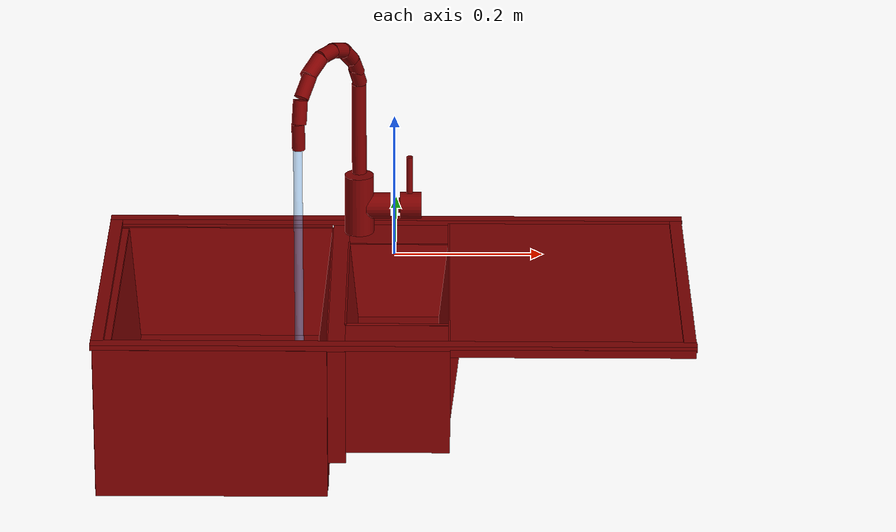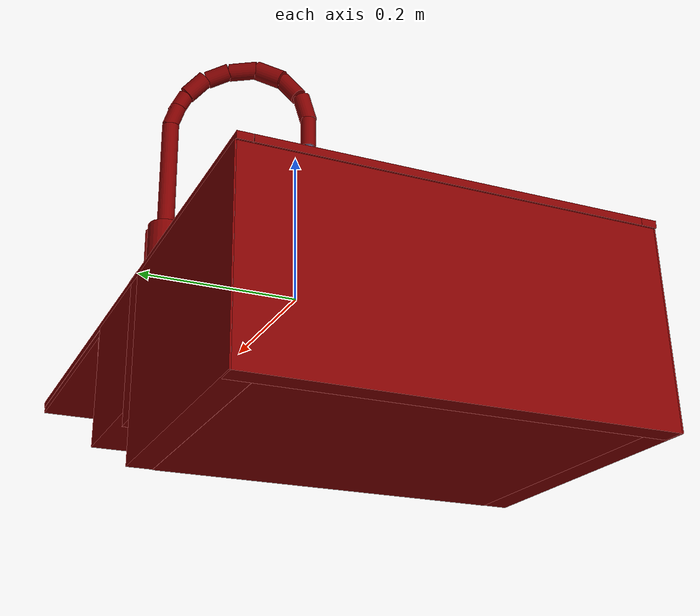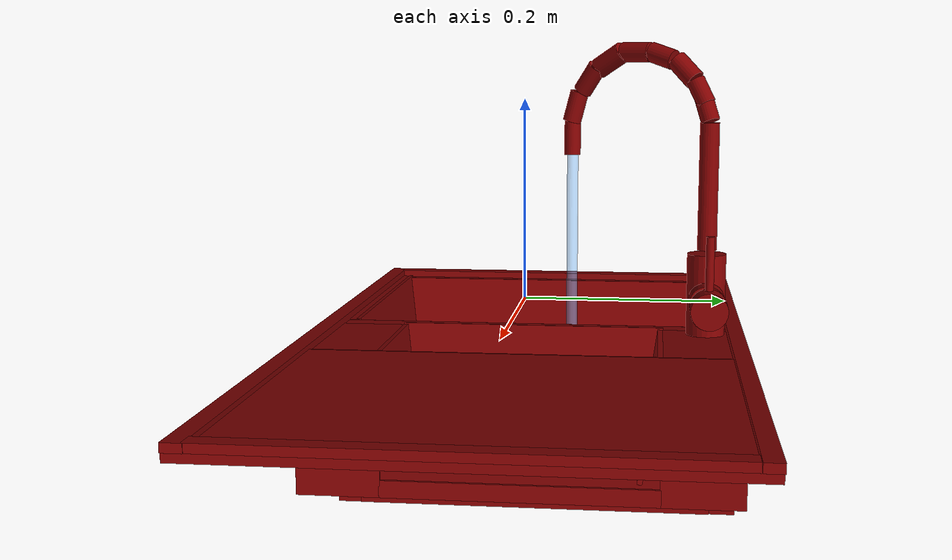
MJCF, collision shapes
<?xml version='1.0' encoding='UTF-8'?>
<mujoco model="model">
  <option timestep="0.002" gravity="0.0 0.0 -9.81"/>
  <compiler angle="radian"/>
  <asset>
    <mesh file="visuals/handle.obj" name="handle_vis"/>
    <mesh file="visuals/Body001.obj" name="Body001_vis"/>
    <mesh file="visuals/spout.obj" name="spout_vis"/>
    <texture file="visuals/T_BC001.png" name="Body001_material" type="2d"/>
    <material name="Body001_material" rgba="1 1 1 1.0" texture="Body001_material" shininess="0.1" specular="2"/>
    <texture file="visuals/T_BC001.png" name="handle_material" type="2d"/>
    <material name="handle_material" rgba="1 1 1 1.0" texture="handle_material" shininess="-1023.0" specular="0.3103448502657381"/>
    <texture file="visuals/T_BC001.png" name="spout_material" type="2d"/>
    <material name="spout_material" rgba="1 1 1 1.0" texture="spout_material" shininess="-1023.0" specular="0.3103448502657381"/>
  </asset>
  <default>
    <default class="visual">
      <geom conaffinity="0" contype="0" group="1" type="mesh"/>
    </default>
    <default class="collision">
      <geom group="0" rgba="0.5 0 0 0.5" solimp="0.998 0.998 0.001" solref="0.001 2"/>
    </default>
    <default class="spawn">
      <geom group="0" rgba="1 1 1 0.5" contype="0" conaffinity="0"/>
      <site group="0" rgba="1 1 1 0.5"/>
    </default>
    <default class="region">
      <geom group="1" conaffinity="0" contype="0" rgba="0 1 0 0"/>
    </default>
  </default>
  <worldbody>
    <body>
      <body name="object">
        <geom mesh="Body001_vis" type="mesh" solimp="0.998 0.998 0.001" solref="0.001 1" friction="0.95 0.3 0.1" class="visual" material="Body001_material"/>
        <geom class="collision" type="box" pos="0.23670988 -0.00060930 -0.04762416" size="0.16209204494953156 0.22278743982315063 0.005591041874140501" quat="1.0 0.0 0.0 0.0"/>
        <geom class="collision" type="cylinder" pos="-0.02469046 0.18437913 -0.00512652" size="0.018282365053892136 0.016813375055789948" quat="0.5 0.4999999701976776 0.5 0.5"/>
        <geom class="collision" type="cylinder" pos="-0.05109613 0.18427037 -0.00718308" size="0.020259195938706398 0.047851018607616425" quat="0.9990497827529907 0.0 0.0 0.043583158403635025"/>
        <geom class="collision" type="box" pos="-0.07542227 0.00003966 -0.12635067" size="0.012089341878890991 0.223550483584404 0.08126430958509445" quat="1.0 0.0 0.0 0.0"/>
        <geom class="collision" type="box" pos="0.00527080 -0.18073754 -0.11827491" size="0.06973908096551895 0.042737413197755814 0.07391305267810822" quat="1.0 0.0 0.0 0.0"/>
        <geom class="collision" type="box" pos="0.00527080 -0.13143511 -0.09608822" size="0.06973908096551895 0.0026383125223219395 0.05264557898044586" quat="0.9983898401260376 0.05672502517700195 0.0 0.0"/>
        <geom class="collision" type="box" pos="0.00527080 0.12864094 -0.10665072" size="0.06973908096551895 0.0026383125223219395 0.06332626193761826" quat="0.9974493384361267 -0.07137805223464966 0.0 0.0"/>
        <geom class="collision" type="box" pos="0.00527080 0.18163352 -0.11827491" size="0.06973908096551895 0.04194354638457298 0.07391286641359329" quat="1.0 0.0 0.0 0.0"/>
        <geom class="collision" type="box" pos="-0.23857894 0.18907258 -0.12315735" size="0.14949655532836914 0.002638312289491296 0.07926877588033676" quat="0.9990689158439636 -0.043143387883901596 0.0 0.0"/>
        <geom class="collision" type="box" pos="-0.24331340 0.20952511 -0.15076895" size="0.1542310118675232 0.014065057970583439 0.1064031645655632" quat="1.0 0.0 0.0 0.0"/>
        <geom class="collision" type="box" pos="-0.23857894 -0.18763667 -0.12287414" size="0.14949655532836914 0.002638312289491296 0.07926878333091736" quat="0.9984583854675293 0.05550500005483627 3.7769997347360366e-18 -2.7465200996024956e-19"/>
        <geom class="collision" type="box" pos="-0.24268528 -0.20968798 -0.15076892" size="0.15485912561416626 0.013900484889745712 0.10640312731266022" quat="1.0 0.0 0.0 0.0"/>
        <geom class="collision" type="box" pos="-0.38616783 0.00020156 -0.15112985" size="0.011722794733941555 0.22169646620750427 0.10604238510131836" quat="1.0 0.0 0.0 0.0"/>
        <geom class="collision" type="box" pos="-0.36718757 0.00079226 -0.14746491" size="0.002350295428186655 0.19769826531410217 0.10238055139780045" quat="0.9991256594657898 0.0 -0.041807886213064194 0.0"/>
        <geom class="collision" type="box" pos="-0.23512405 -0.00144800 -0.23104856" size="0.1477920264005661 0.19654637575149536 0.026122910901904106" quat="1.0 0.0 0.0 0.0"/>
        <geom class="collision" type="box" pos="0.00225436 -0.00126385 -0.15993702" size="0.061879049986600876 0.12646277248859406 0.013112707063555717" quat="1.0 0.0 0.0 0.0"/>
        <geom class="collision" type="box" pos="-0.09149786 0.00078380 -0.12622828" size="0.007510052993893623 0.19804197549819946 0.08050790429115295" quat="0.9981808066368103 0.0 0.06029169261455536 0.0"/>
        <geom class="collision" type="box" pos="0.07223516 0.00106181 -0.10832924" size="0.007510052062571049 0.2208782583475113 0.06595868617296219" quat="0.9981808066368103 0.0 0.06029169261455536 0.0"/>
        <geom class="collision" type="box" pos="-0.05886271 0.00078380 -0.09645733" size="0.0012203236110508442 0.14010055363178253 0.054632414132356644" quat="0.9985798597335815 0.0 -0.05327498912811279 0.0"/>
        <geom class="collision" type="box" pos="0.00008770 0.21480342 -0.04122343" size="0.40047717094421387 0.007950956001877785 0.003980221226811409" quat="1.0 0.0 0.0 0.0"/>
        <geom class="collision" type="box" pos="-0.00002723 -0.21457709 -0.04122343" size="0.4004419147968292 0.008779192343354225 0.003980221226811409" quat="1.0 0.0 0.0 0.0"/>
        <geom class="collision" type="box" pos="-0.39194978 -0.00062116 -0.04122343" size="0.008455842733383179 0.20691721141338348 0.0039802975952625275" quat="1.0 0.0 0.0 0.0"/>
        <geom class="collision" type="box" pos="0.39128979 -0.00062112 -0.04122343" size="0.008395257405936718 0.20691721141338348 0.003980285953730345" quat="1.0 0.0 0.0 0.0"/>
        <geom class="collision" type="box" pos="0.00527080 0.00086058 -0.18322616" size="0.06973908096551895 0.14008310437202454 0.00896157044917345" quat="1.0 0.0 0.0 0.0"/>
        <geom class="collision" type="box" pos="-0.18501400 -0.00442809 -0.24509376" size="0.03927760198712349 0.04429144039750099 0.004517825320363045" quat="1.0 0.0 0.0 0.0"/>
        <body name="handle">
          <joint axis="1.0 0.0 0.0" pos="0.01191097 0.18467798 -0.00521703" limited="true" name="handle_temp_joint" type="hinge" range="-0.7853981633974483 0.7853981633974483" damping="0.5" frictionloss="1" armature="2"/>
          <joint axis="0.0 1.0 0.0" pos="0.01191097 0.18467798 -0.00521703" limited="true" name="handle_joint" type="hinge" range="0 0.5" damping="0.5" frictionloss="1" armature="2"/>
          <geom mesh="handle_vis" type="mesh" solimp="0.998 0.998 0.001" solref="0.001 1" friction="0.95 0.3 0.1" class="visual" material="handle_material"/>
          <geom class="collision" type="cylinder" pos="0.02044635 0.18483651 -0.00512652" size="0.01856803148984909 0.014965763315558434" quat="0.5 0.4999999701976776 0.5 0.5"/>
          <geom class="collision" type="cylinder" pos="0.00636543 0.18437913 -0.00512652" size="0.01044311560690403 0.002668767236173153" quat="0.5 0.4999999701976776 0.5 0.5"/>
          <geom name="handle_main" class="collision" type="cylinder" pos="0.01906048 0.18462843 0.04075318" size="0.0043233647011220455 0.02681279182434082" quat="1.0 0.0 0.0 0.0"/>
        </body>
        <body name="spout">
          <joint axis="0.0 0.0 1.0" pos="-0.05146552 0.18482825 0.13857291" limited="true" name="spout_joint" range="-0.7853981633974483 0.7853981633974483" type="hinge" damping="10"/>
          <site type="cylinder" rgba="0.5 0.75 1 0.5" size="0.0060607255436480045 0.17275060713291168" pos="-0.13199584 0.03861595 -0.02647452" name="water"/>
          <geom mesh="spout_vis" type="mesh" solimp="0.998 0.998 0.001" solref="0.001 1" friction="0.95 0.3 0.1" class="visual" material="spout_material"/>
          <geom class="collision" type="cylinder" pos="-0.05109613 0.18427037 0.11011314" size="0.010071869939565659 0.06565434145927429" quat="0.9990497827529907 0.0 0.0 0.043583158403635025" name="spout_main"/>
          <geom class="collision" type="cylinder" pos="-0.05616848 0.17468486 0.20652640" size="0.00965795572847128 0.013342335820198059" quat="0.9196361303329468 0.16925090551376343 -0.19007854163646698 0.29915493726730347"/>
          <geom class="collision" type="cylinder" pos="-0.06676484 0.15893808 0.22870502" size="0.010738730430603027 0.014835407957434654" quat="0.8670938014984131 0.2554492652416229 -0.30630964040756226 0.2984432876110077"/>
          <geom class="collision" type="cylinder" pos="-0.07931789 0.13524080 0.24309537" size="0.010424953885376453 0.0144019341096282" quat="0.755740761756897 0.35412755608558655 -0.47815293073654175 0.2735312283039093"/>
          <geom class="collision" type="cylinder" pos="-0.09468217 0.10821008 0.24720899" size="0.010484162718057632 0.016757162287831306" quat="0.6666451692581177 0.44615498185157776 -0.546674907207489 0.24015936255455017"/>
          <geom class="collision" type="cylinder" pos="-0.11042153 0.08023216 0.23912043" size="0.011186142452061176 0.017792953178286552" quat="0.48275741934776306 0.5455014705657959 -0.6670209765434265 0.15638543665409088"/>
          <geom class="collision" type="cylinder" pos="-0.12116082 0.05757107 0.21936627" size="0.010224497877061367 0.016100460663437843" quat="0.31250452995300293 0.6214025020599365 -0.7136070728302002 0.08345532417297363"/>
          <geom class="collision" type="cylinder" pos="-0.12882037 0.04181926 0.18948947" size="0.01005901675671339 0.01656615175306797" quat="0.10936148464679718 0.6737759113311768 -0.7270243167877197 0.07417364418506622"/>
          <geom class="collision" type="cylinder" pos="-0.13081978 0.03844345 0.15542080" size="0.0089662941172719 0.01852126605808735" quat="-0.006637726444751024 0.6839892268180847 -0.7293778657913208 0.011073256842792034"/>
          <geom class="collision" type="cylinder" pos="-0.05287620 0.18099281 0.18946009" size="0.009657956659793854 0.013342335820198059" quat="0.9186800122261047 0.09213677048683167 -0.16663409769535065 0.34607934951782227"/>
        </body>
        <geom class="region" name="reg_basin_left" type="box" pos="-0.232503175 -0.00027848999999999235 -0.11853333499999999" size="0.12060432500000001 0.17198626 0.083069845"/>
        <geom class="region" name="reg_basin_right" type="box" pos="0.0029324150000000007 -0.0007393499999999997 -0.08906185999999999" size="0.051864845 0.11667115 0.05388074"/>
        <geom class="region" name="reg_main" type="box" pos="-4.999999997368221e-09 1.0000000000287557e-07 -0.147207585" size="0.40167416499999997 0.2245893 0.110964465"/>
      </body>
    </body>
  </worldbody>
  <actuator>
    <motor name="handle_joint_actuator" joint="handle_joint" gear="10"/>
    <motor name="handle_temp_joint_actuator" joint="handle_temp_joint" gear="10"/>
    <motor name="spout_joint_actuator" joint="spout_joint" gear="10"/>
  </actuator>
</mujoco>
